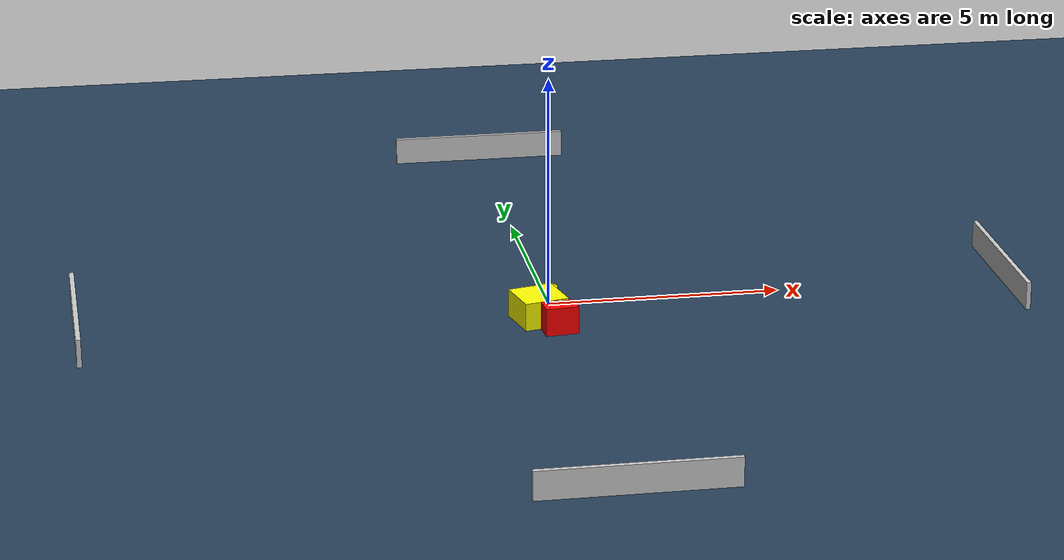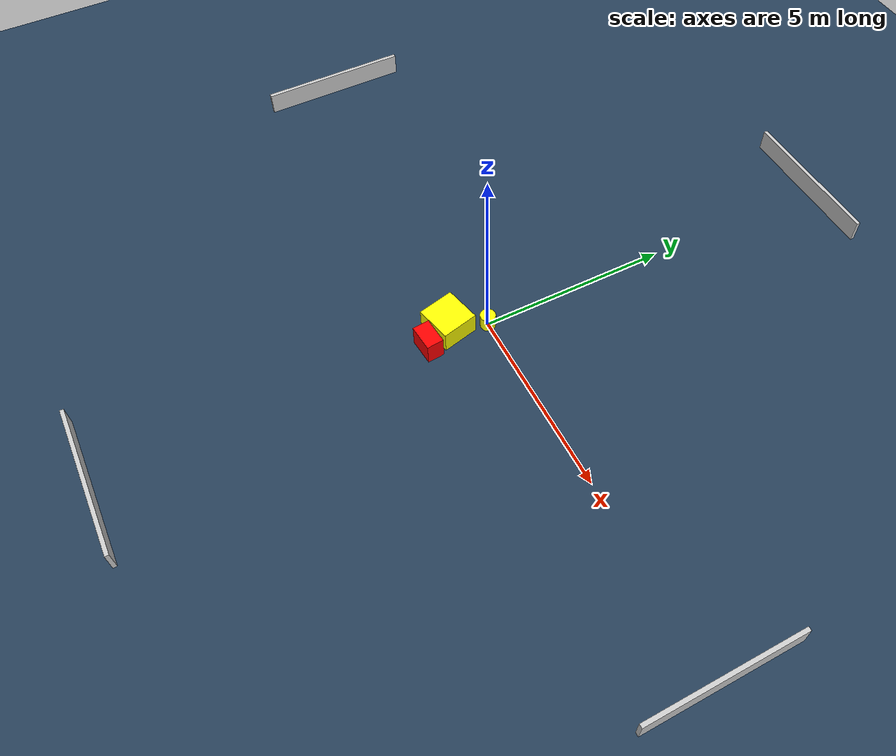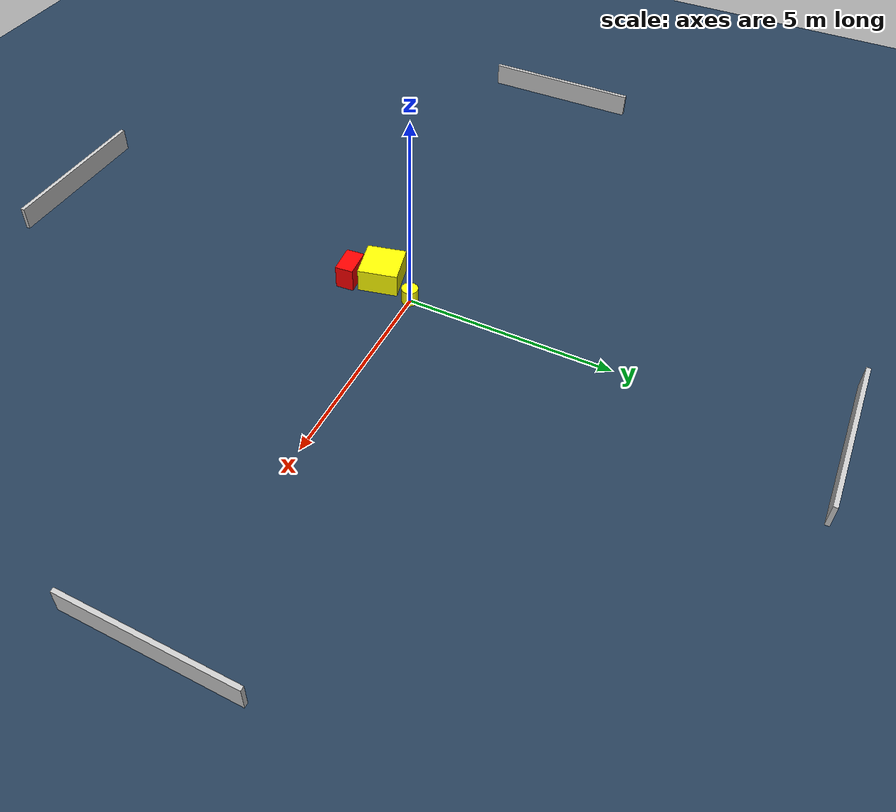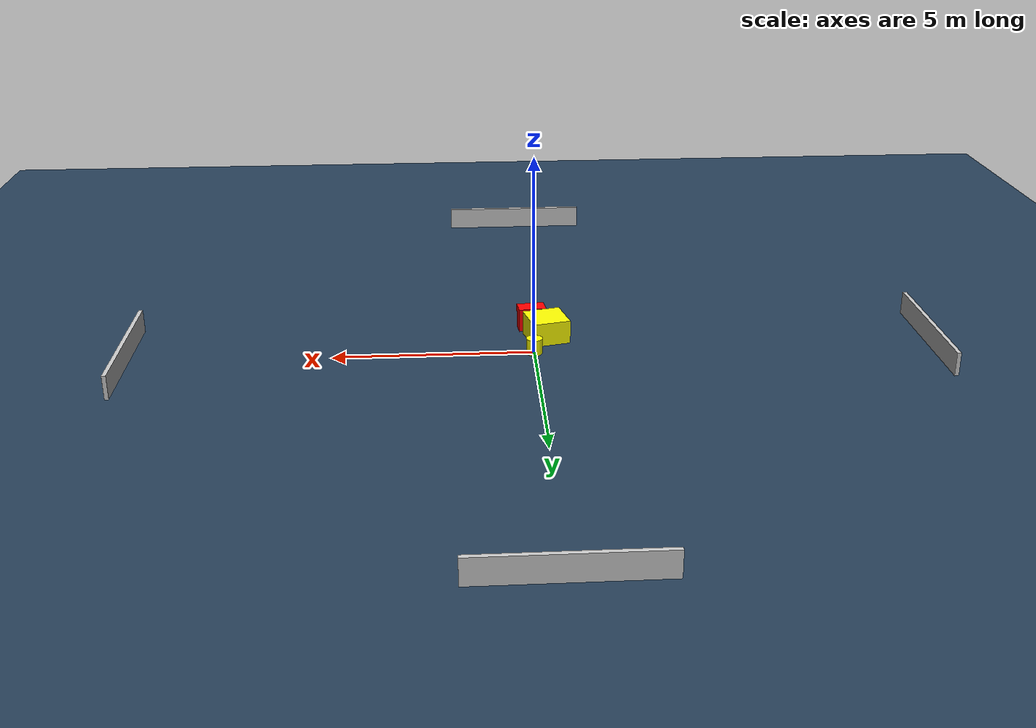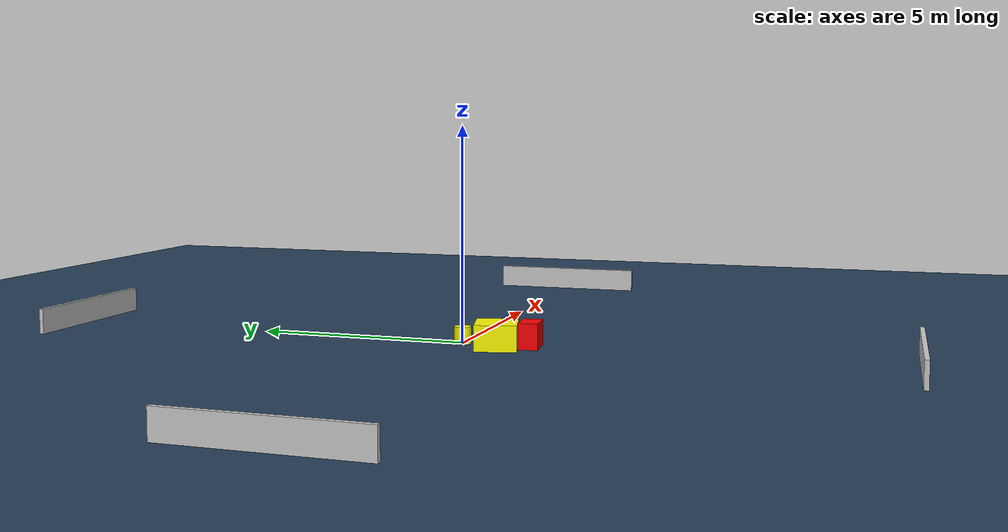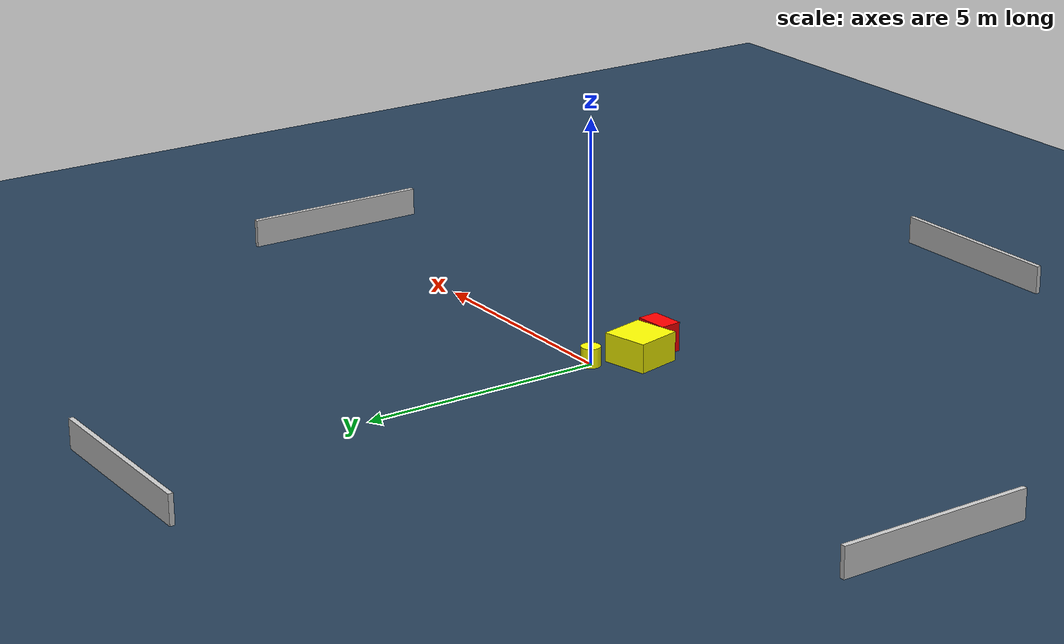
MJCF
<?xml version="1.0" ?>
<mujoco model="generated_environment">
  <option timestep="0.01" integrator="RK4" cone="elliptic"/>
  <default>
    <geom density="1"/>
  </default>
  <asset>
    <texture builtin="gradient" height="3072" name="skybox" rgb1="0.3 0.5 0.7" rgb2="0 0 0" type="skybox" width="512"/>
    <texture builtin="checker" height="300" name="groundplane" rgb1="0.2 0.3 0.4" rgb2="0.1 0.2 0.3" type="2d" width="300"/>
    <material name="groundplane" reflectance="0.2" texrepeat="5 5" texture="groundplane"/>
  </asset>
  <worldbody>
    <light dir="0 0 -1" directional="true" pos="0 0 1.5"/>
    <geom condim="3" friction="0.5 0.005 0.001" material="groundplane" name="floor" pos="0 0 0" size="0 0 0.05" type="plane"/>
    <body name="walls">
      <geom name="wall_1" condim="4" pos="-10.0 0.0 0.3" rgba="0.800000011920929 0.800000011920929 0.800000011920929 1.0" size="0.05 2.0 0.3" type="box"/>
      <geom name="wall_2" condim="4" pos="10.0 0.0 0.3" rgba="0.800000011920929 0.800000011920929 0.800000011920929 1.0" size="0.05 2.0 0.3" type="box"/>
      <geom name="wall_3" condim="4" pos="0.0 -10.0 0.3" rgba="0.800000011920929 0.800000011920929 0.800000011920929 1.0" size="2.0 0.05 0.3" type="box"/>
      <geom name="wall_4" condim="4" pos="0.0 10.0 0.3" rgba="0.800000011920929 0.800000011920929 0.800000011920929 1.0" size="2.0 0.05 0.3" type="box"/>
    </body>
    <body name="robot">
      <joint name="joint_x" type="slide" pos="0 0 0" axis="1 0 0"/>
      <joint name="joint_y" type="slide" pos="0 0 0" axis="0 1 0"/>
      <geom name="robot" type="cylinder" pos="0.0 0.0 0.2" size="0.2 0.2 0.0" mass="5.0" friction="1.0 0.005 0.0001" condim="4" rgba="1.0 1.0 0.0 1.0"/>
    </body>
    <body name="obstacle_1_movable">
      <geom name="obstacle_1_movable" condim="4" pos="-0.3643254169215671 -0.9256736122960167 0.3" euler="0 0 283.26201519417725" friction="0.0 0.005 0.001" rgba="1.0 1.0 0.0 1.0" size="0.480502318445525 0.4866954652005542 0.3" type="box" mass="0.1"/>
      <joint type="free"/>
    </body>
    <body name="obstacle_2_static">
      <geom name="obstacle_2_static" condim="4" pos="-0.02730432073086116 -1.6266646122867765 0.3" euler="0 0 95.23890766951546" friction="0.0 0.005 0.001" rgba="1.0 0.0 0.0 1.0" size="0.22112415922832296 0.3504201006508321 0.3" type="box"/>
    </body>
  </worldbody>
  <actuator>
    <motor name="actuator_x" joint="joint_x" gear="1" ctrlrange="-1 1"/>
    <motor name="actuator_y" joint="joint_y" gear="1" ctrlrange="-1 1"/>
  </actuator>
</mujoco>
